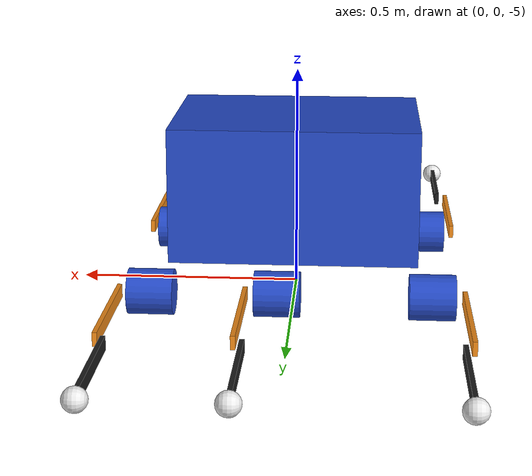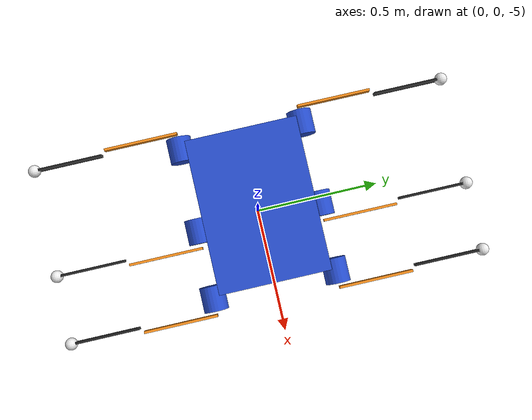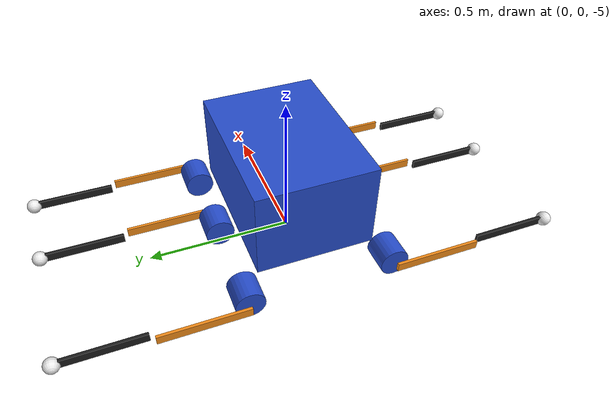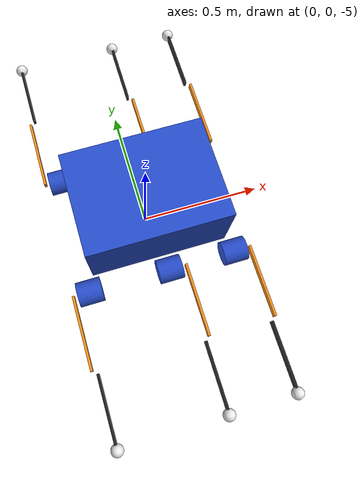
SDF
<?xml version="1.0" ?>
<sdf version="1.8">
    <world name="car_world">
        <physics name="1ms" type="ignored">
            <max_step_size>0.001</max_step_size>
            <real_time_factor>1.0</real_time_factor>
        </physics>
        <plugin
            filename="gz-sim-physics-system"
            name="gz::sim::systems::Physics">
        </plugin>
        <plugin
            filename="gz-sim-user-commands-system"
            name="gz::sim::systems::UserCommands">
        </plugin>
        <plugin
            filename="gz-sim-scene-broadcaster-system"
            name="gz::sim::systems::SceneBroadcaster">
        </plugin>

        <light type="directional" name="sun">
            <cast_shadows>true</cast_shadows>
            <pose>0 0 10 0 0 0</pose>
            <diffuse>0.8 0.8 0.8 1</diffuse>
            <specular>0.2 0.2 0.2 1</specular>
            <attenuation>
                <range>1000</range>
                <constant>0.9</constant>
                <linear>0.01</linear>
                <quadratic>0.001</quadratic>
            </attenuation>
            <direction>-0.5 0.1 -0.9</direction>
        </light>

        <model name="ground_plane">
            <static>true</static>
            <link name="link">
                <collision name="collision">
                <geometry>
                    <plane>
                    <normal>0 0 1</normal>
                    </plane>
                </geometry>
                </collision>
                <visual name="visual">
                <geometry>
                    <plane>
                    <normal>0 0 1</normal>
                    <size>100 100</size>
                    </plane>
                </geometry>
                <material>
                    <ambient>0.8 0.8 0.8 1</ambient>
                    <diffuse>0.8 0.8 0.8 1</diffuse>
                    <specular>0.8 0.8 0.8 1</specular>
                </material>
                </visual>
            </link>
        </model>

        <model name='robot'>
            <static>true</static>
            <pose>0 0 -5.15 0 0 0</pose>
            <link name='base_link'>
            <visual name='base_link_fixed_joint_lump__body_link_visual'>
                <pose>0 0 0.40000000000000002 0 0 0</pose>
                <geometry>
                <box>
                    <size>0.55000000000000004 0.40000000000000002 0.29999999999999999</size>
                </box>
                </geometry>
                <material>
                <script>
                    <name>Gazebo/Blue</name>
                    <uri>file://media/materials/scripts/gazebo.material</uri>
                </script>
                <diffuse>0.25 0.25 1 1</diffuse>
                <ambient>0.25 0.25 1 1</ambient>
                </material>
            </visual>
            </link>
            <joint name='coxa_joint_0' type='revolute'>
            <pose relative_to='base_link'>0.27500000000000002 -0.20000000000000001 0.25 0 0 0</pose>
            <parent>base_link</parent>
            <child>coxa_link_0</child>
            <axis>
                <xyz>0 0 1</xyz>
                <limit>
                <lower>-3.1400000000000001</lower>
                <upper>3.1400000000000001</upper>
                <effort>250</effort>
                <velocity>10</velocity>
                </limit>
                <dynamics>
                <spring_reference>0</spring_reference>
                <spring_stiffness>0</spring_stiffness>
                </dynamics>
            </axis>
            </joint>
            <link name='coxa_link_0'>
            <pose relative_to='coxa_joint_0'>0 0 0 0 0 0</pose>
            <visual name='coxa_link_0_visual'>
                <pose>0.029999999999999999 -0.050000000000000003 -0.050000000000000003 0 1.5707963267948966 0</pose>
                <geometry>
                <cylinder>
                    <length>0.10000000000000001</length>
                    <radius>0.050000000000000003</radius>
                </cylinder>
                </geometry>
                <material>
                <script>
                    <name>Gazebo/Blue</name>
                    <uri>file://media/materials/scripts/gazebo.material</uri>
                </script>
                <diffuse>1 0 0 1</diffuse>
                <ambient>1 0 0 1</ambient>
                </material>
            </visual>
            </link>
            <joint name='femur_joint_0' type='revolute'>
            <pose relative_to='coxa_link_0'>0.070000000000000007 -0.050000000000000003 -0.050000000000000003 0 -1.5700000000004057 0</pose>
            <parent>coxa_link_0</parent>
            <child>femur_link_0</child>
            <axis>
                <xyz>0 0 1</xyz>
                <limit>
                <lower>-3.1400000000000001</lower>
                <upper>3.1400000000000001</upper>
                <effort>250</effort>
                <velocity>10</velocity>
                </limit>
                <dynamics>
                <spring_reference>0</spring_reference>
                <spring_stiffness>0</spring_stiffness>
                </dynamics>
            </axis>
            </joint>
            <link name='femur_link_0'>
            <pose relative_to='femur_joint_0'>0 0 0 0 0 0</pose>
            <visual name='femur_link_0_visual'>
                <pose>0 -0.14999999999999999 -0.029999999999999999 0 0 0</pose>
                <geometry>
                <box>
                    <size>0.029999999999999999 0.29999999999999999 0.01</size>
                </box>
                </geometry>
                <material>
                <script>
                    <name>Gazebo/Orange</name>
                    <uri>file://media/materials/scripts/gazebo.material</uri>
                </script>
                <diffuse>1 0.37500003 0.125 1</diffuse>
                <ambient>1 0.37500003 0.125 1</ambient>
                </material>
            </visual>
            </link>
            <joint name='tibia_joint_0' type='revolute'>
            <pose relative_to='femur_link_0'>0 -0.29999999999999999 -0.01 3.1415926535897931 0.001592653589793114 3.1415926535897931</pose>
            <parent>femur_link_0</parent>
            <child>tibia_link_0</child>
            <axis>
                <xyz>0 0 1</xyz>
                <limit>
                <lower>-3.1400000000000001</lower>
                <upper>3.1400000000000001</upper>
                <effort>250</effort>
                <velocity>10</velocity>
                </limit>
                <dynamics>
                <spring_reference>0</spring_reference>
                <spring_stiffness>0</spring_stiffness>
                </dynamics>
            </axis>
            </joint>
            <link name='tibia_link_0'>
            <pose relative_to='tibia_joint_0'>0 0 0 0 0 0</pose>
            <visual name='tibia_link_0_visual'>
                <pose>0 -0.14999999999999999 0 0 0 0</pose>
                <geometry>
                <box>
                    <size>0.029999999999999999 0.27000000000000002 0.01</size>
                </box>
                </geometry>
                <material>
                <script>
                    <name>Gazebo/Black</name>
                    <uri>file://media/materials/scripts/gazebo.material</uri>
                </script>
                <diffuse>0 0 0 1</diffuse>
                <ambient>0 0 0 1</ambient>
                </material>
            </visual>
            <visual name='tibia_link_0_fixed_joint_lump__foot_link_0_visual_1'>
                <pose>0 -0.29499999999999998 0 0 0 0</pose>
                <geometry>
                <sphere>
                    <radius>0.025000000000000001</radius>
                </sphere>
                </geometry>
                <material>
                <script>
                    <name>Gazebo/White</name>
                    <uri>file://media/materials/scripts/gazebo.material</uri>
                </script>
                <diffuse>1 1 1 1</diffuse>
                <ambient>1 1 1 1</ambient>
                </material>
            </visual>
            </link>
            <joint name='coxa_joint_1' type='revolute'>
            <pose relative_to='base_link'>0 -0.20000000000000001 0.25 0 0 0</pose>
            <parent>base_link</parent>
            <child>coxa_link_1</child>
            <axis>
                <xyz>0 0 1</xyz>
                <limit>
                <lower>-3.1400000000000001</lower>
                <upper>3.1400000000000001</upper>
                <effort>250</effort>
                <velocity>10</velocity>
                </limit>
                <dynamics>
                <spring_reference>0</spring_reference>
                <spring_stiffness>0</spring_stiffness>
                </dynamics>
            </axis>
            </joint>
            <link name='coxa_link_1'>
            <pose relative_to='coxa_joint_1'>0 0 0 0 0 0</pose>
            <visual name='coxa_link_1_visual'>
                <pose>0.029999999999999999 -0.050000000000000003 -0.050000000000000003 0 1.5707963267948966 0</pose>
                <geometry>
                <cylinder>
                    <length>0.10000000000000001</length>
                    <radius>0.050000000000000003</radius>
                </cylinder>
                </geometry>
                <material>
                <script>
                    <name>Gazebo/Blue</name>
                    <uri>file://media/materials/scripts/gazebo.material</uri>
                </script>
                <diffuse>1 0 0 1</diffuse>
                <ambient>1 0 0 1</ambient>
                </material>
            </visual>
            </link>
            <joint name='femur_joint_1' type='revolute'>
            <pose relative_to='coxa_link_1'>0.070000000000000007 -0.050000000000000003 -0.050000000000000003 0 -1.5700000000004057 0</pose>
            <parent>coxa_link_1</parent>
            <child>femur_link_1</child>
            <axis>
                <xyz>0 0 1</xyz>
                <limit>
                <lower>-3.1400000000000001</lower>
                <upper>3.1400000000000001</upper>
                <effort>250</effort>
                <velocity>10</velocity>
                </limit>
                <dynamics>
                <spring_reference>0</spring_reference>
                <spring_stiffness>0</spring_stiffness>
                </dynamics>
            </axis>
            </joint>
            <link name='femur_link_1'>
            <pose relative_to='femur_joint_1'>0 0 0 0 0 0</pose>
            <visual name='femur_link_1_visual'>
                <pose>0 -0.14999999999999999 -0.029999999999999999 0 0 0</pose>
                <geometry>
                <box>
                    <size>0.029999999999999999 0.29999999999999999 0.01</size>
                </box>
                </geometry>
                <material>
                <script>
                    <name>Gazebo/Orange</name>
                    <uri>file://media/materials/scripts/gazebo.material</uri>
                </script>
                <diffuse>1 0.37500003 0.125 1</diffuse>
                <ambient>1 0.37500003 0.125 1</ambient>
                </material>
            </visual>
            </link>
            <joint name='tibia_joint_1' type='revolute'>
            <pose relative_to='femur_link_1'>0 -0.29999999999999999 -0.01 3.1415926535897931 0.001592653589793114 3.1415926535897931</pose>
            <parent>femur_link_1</parent>
            <child>tibia_link_1</child>
            <axis>
                <xyz>0 0 1</xyz>
                <limit>
                <lower>-3.1400000000000001</lower>
                <upper>3.1400000000000001</upper>
                <effort>250</effort>
                <velocity>10</velocity>
                </limit>
                <dynamics>
                <spring_reference>0</spring_reference>
                <spring_stiffness>0</spring_stiffness>
                </dynamics>
            </axis>
            </joint>
            <link name='tibia_link_1'>
            <pose relative_to='tibia_joint_1'>0 0 0 0 0 0</pose>
            <visual name='tibia_link_1_visual'>
                <pose>0 -0.14999999999999999 0 0 0 0</pose>
                <geometry>
                <box>
                    <size>0.029999999999999999 0.27000000000000002 0.01</size>
                </box>
                </geometry>
                <material>
                <script>
                    <name>Gazebo/Black</name>
                    <uri>file://media/materials/scripts/gazebo.material</uri>
                </script>
                <diffuse>0 0 0 1</diffuse>
                <ambient>0 0 0 1</ambient>
                </material>
            </visual>
            <visual name='tibia_link_1_fixed_joint_lump__foot_link_1_visual_1'>
                <pose>0 -0.29499999999999998 0 0 0 0</pose>
                <geometry>
                <sphere>
                    <radius>0.025000000000000001</radius>
                </sphere>
                </geometry>
                <material>
                <script>
                    <name>Gazebo/White</name>
                    <uri>file://media/materials/scripts/gazebo.material</uri>
                </script>
                <diffuse>1 1 1 1</diffuse>
                <ambient>1 1 1 1</ambient>
                </material>
            </visual>
            </link>
            <joint name='coxa_joint_2' type='revolute'>
            <pose relative_to='base_link'>-0.27500000000000002 -0.20000000000000001 0.25 0 0 0</pose>
            <parent>base_link</parent>
            <child>coxa_link_2</child>
            <axis>
                <xyz>0 0 1</xyz>
                <limit>
                <lower>-3.1400000000000001</lower>
                <upper>3.1400000000000001</upper>
                <effort>250</effort>
                <velocity>10</velocity>
                </limit>
                <dynamics>
                <spring_reference>0</spring_reference>
                <spring_stiffness>0</spring_stiffness>
                </dynamics>
            </axis>
            </joint>
            <link name='coxa_link_2'>
            <pose relative_to='coxa_joint_2'>0 0 0 0 0 0</pose>
            <visual name='coxa_link_2_visual'>
                <pose>-0.029999999999999999 -0.050000000000000003 -0.050000000000000003 0 1.5707963267948966 0</pose>
                <geometry>
                <cylinder>
                    <length>0.10000000000000001</length>
                    <radius>0.050000000000000003</radius>
                </cylinder>
                </geometry>
                <material>
                <script>
                    <name>Gazebo/Blue</name>
                    <uri>file://media/materials/scripts/gazebo.material</uri>
                </script>
                <diffuse>1 0 0 1</diffuse>
                <ambient>1 0 0 1</ambient>
                </material>
            </visual>
            </link>
            <joint name='femur_joint_2' type='revolute'>
            <pose relative_to='coxa_link_2'>-0.070000000000000007 -0.050000000000000003 -0.050000000000000003 0 -1.5700000000004057 0</pose>
            <parent>coxa_link_2</parent>
            <child>femur_link_2</child>
            <axis>
                <xyz>0 0 1</xyz>
                <limit>
                <lower>-3.1400000000000001</lower>
                <upper>3.1400000000000001</upper>
                <effort>250</effort>
                <velocity>10</velocity>
                </limit>
                <dynamics>
                <spring_reference>0</spring_reference>
                <spring_stiffness>0</spring_stiffness>
                </dynamics>
            </axis>
            </joint>
            <link name='femur_link_2'>
            <pose relative_to='femur_joint_2'>0 0 0 0 0 0</pose>
            <visual name='femur_link_2_visual'>
                <pose>0 -0.14999999999999999 0.029999999999999999 0 0 0</pose>
                <geometry>
                <box>
                    <size>0.029999999999999999 0.29999999999999999 0.01</size>
                </box>
                </geometry>
                <material>
                <script>
                    <name>Gazebo/Orange</name>
                    <uri>file://media/materials/scripts/gazebo.material</uri>
                </script>
                <diffuse>1 0.37500003 0.125 1</diffuse>
                <ambient>1 0.37500003 0.125 1</ambient>
                </material>
            </visual>
            </link>
            <joint name='tibia_joint_2' type='revolute'>
            <pose relative_to='femur_link_2'>0 -0.29999999999999999 0.01 3.1415926535897931 0.001592653589793114 3.1415926535897931</pose>
            <parent>femur_link_2</parent>
            <child>tibia_link_2</child>
            <axis>
                <xyz>0 0 1</xyz>
                <limit>
                <lower>-3.1400000000000001</lower>
                <upper>3.1400000000000001</upper>
                <effort>250</effort>
                <velocity>10</velocity>
                </limit>
                <dynamics>
                <spring_reference>0</spring_reference>
                <spring_stiffness>0</spring_stiffness>
                </dynamics>
            </axis>
            </joint>
            <link name='tibia_link_2'>
            <pose relative_to='tibia_joint_2'>0 0 0 0 0 0</pose>
            <visual name='tibia_link_2_visual'>
                <pose>0 -0.14999999999999999 0 0 0 0</pose>
                <geometry>
                <box>
                    <size>0.029999999999999999 0.27000000000000002 0.01</size>
                </box>
                </geometry>
                <material>
                <script>
                    <name>Gazebo/Black</name>
                    <uri>file://media/materials/scripts/gazebo.material</uri>
                </script>
                <diffuse>0 0 0 1</diffuse>
                <ambient>0 0 0 1</ambient>
                </material>
            </visual>
            <visual name='tibia_link_2_fixed_joint_lump__foot_link_2_visual_1'>
                <pose>0 -0.29499999999999998 0 0 0 0</pose>
                <geometry>
                <sphere>
                    <radius>0.025000000000000001</radius>
                </sphere>
                </geometry>
                <material>
                <script>
                    <name>Gazebo/White</name>
                    <uri>file://media/materials/scripts/gazebo.material</uri>
                </script>
                <diffuse>1 1 1 1</diffuse>
                <ambient>1 1 1 1</ambient>
                </material>
            </visual>
            </link>
            <joint name='coxa_joint_3' type='revolute'>
            <pose relative_to='base_link'>0.27500000000000002 0.20000000000000001 0.25 0 0 3.1400000000000001</pose>
            <parent>base_link</parent>
            <child>coxa_link_3</child>
            <axis>
                <xyz>0 0 1</xyz>
                <limit>
                <lower>-3.1400000000000001</lower>
                <upper>3.1400000000000001</upper>
                <effort>250</effort>
                <velocity>10</velocity>
                </limit>
                <dynamics>
                <spring_reference>0</spring_reference>
                <spring_stiffness>0</spring_stiffness>
                </dynamics>
            </axis>
            </joint>
            <link name='coxa_link_3'>
            <pose relative_to='coxa_joint_3'>0 0 0 0 0 0</pose>
            <visual name='coxa_link_3_visual'>
                <pose>-0.029999999999999999 -0.050000000000000003 -0.050000000000000003 0 1.5707963267948966 0</pose>
                <geometry>
                <cylinder>
                    <length>0.10000000000000001</length>
                    <radius>0.050000000000000003</radius>
                </cylinder>
                </geometry>
                <material>
                <script>
                    <name>Gazebo/Blue</name>
                    <uri>file://media/materials/scripts/gazebo.material</uri>
                </script>
                <diffuse>1 0 0 1</diffuse>
                <ambient>1 0 0 1</ambient>
                </material>
            </visual>
            </link>
            <joint name='femur_joint_3' type='revolute'>
            <pose relative_to='coxa_link_3'>-0.070000000000000007 -0.050000000000000003 -0.050000000000000003 0 -1.5700000000004057 0</pose>
            <parent>coxa_link_3</parent>
            <child>femur_link_3</child>
            <axis>
                <xyz>0 0 1</xyz>
                <limit>
                <lower>-3.1400000000000001</lower>
                <upper>3.1400000000000001</upper>
                <effort>250</effort>
                <velocity>10</velocity>
                </limit>
                <dynamics>
                <spring_reference>0</spring_reference>
                <spring_stiffness>0</spring_stiffness>
                </dynamics>
            </axis>
            </joint>
            <link name='femur_link_3'>
            <pose relative_to='femur_joint_3'>0 0 0 0 0 0</pose>
            <visual name='femur_link_3_visual'>
                <pose>0 -0.14999999999999999 0.029999999999999999 0 0 0</pose>
                <geometry>
                <box>
                    <size>0.029999999999999999 0.29999999999999999 0.01</size>
                </box>
                </geometry>
                <material>
                <script>
                    <name>Gazebo/Orange</name>
                    <uri>file://media/materials/scripts/gazebo.material</uri>
                </script>
                <diffuse>1 0.37500003 0.125 1</diffuse>
                <ambient>1 0.37500003 0.125 1</ambient>
                </material>
            </visual>
            </link>
            <joint name='tibia_joint_3' type='revolute'>
            <pose relative_to='femur_link_3'>0 -0.29999999999999999 0.01 3.1415926535897931 0.001592653589793114 3.1415926535897931</pose>
            <parent>femur_link_3</parent>
            <child>tibia_link_3</child>
            <axis>
                <xyz>0 0 1</xyz>
                <limit>
                <lower>-3.1400000000000001</lower>
                <upper>3.1400000000000001</upper>
                <effort>250</effort>
                <velocity>10</velocity>
                </limit>
                <dynamics>
                <spring_reference>0</spring_reference>
                <spring_stiffness>0</spring_stiffness>
                </dynamics>
            </axis>
            </joint>
            <link name='tibia_link_3'>
            <pose relative_to='tibia_joint_3'>0 0 0 0 0 0</pose>
            <visual name='tibia_link_3_visual'>
                <pose>0 -0.14999999999999999 0 0 0 0</pose>
                <geometry>
                <box>
                    <size>0.029999999999999999 0.27000000000000002 0.01</size>
                </box>
                </geometry>
                <material>
                <script>
                    <name>Gazebo/Black</name>
                    <uri>file://media/materials/scripts/gazebo.material</uri>
                </script>
                <diffuse>0 0 0 1</diffuse>
                <ambient>0 0 0 1</ambient>
                </material>
            </visual>
            <visual name='tibia_link_3_fixed_joint_lump__foot_link_3_visual_1'>
                <pose>0 -0.29499999999999998 0 0 0 0</pose>
                <geometry>
                <sphere>
                    <radius>0.025000000000000001</radius>
                </sphere>
                </geometry>
                <material>
                <script>
                    <name>Gazebo/White</name>
                    <uri>file://media/materials/scripts/gazebo.material</uri>
                </script>
                <diffuse>1 1 1 1</diffuse>
                <ambient>1 1 1 1</ambient>
                </material>
            </visual>
            </link>
            <joint name='coxa_joint_4' type='revolute'>
            <pose relative_to='base_link'>0 0.20000000000000001 0.25 0 0 3.1400000000000001</pose>
            <parent>base_link</parent>
            <child>coxa_link_4</child>
            <axis>
                <xyz>0 0 1</xyz>
                <limit>
                <lower>-3.1400000000000001</lower>
                <upper>3.1400000000000001</upper>
                <effort>250</effort>
                <velocity>10</velocity>
                </limit>
                <dynamics>
                <spring_reference>0</spring_reference>
                <spring_stiffness>0</spring_stiffness>
                </dynamics>
            </axis>
            </joint>
            <link name='coxa_link_4'>
            <pose relative_to='coxa_joint_4'>0 0 0 0 0 0</pose>
            <visual name='coxa_link_4_visual'>
                <pose>-0.029999999999999999 -0.050000000000000003 -0.050000000000000003 0 1.5707963267948966 0</pose>
                <geometry>
                <cylinder>
                    <length>0.10000000000000001</length>
                    <radius>0.050000000000000003</radius>
                </cylinder>
                </geometry>
                <material>
                <script>
                    <name>Gazebo/Blue</name>
                    <uri>file://media/materials/scripts/gazebo.material</uri>
                </script>
                <diffuse>1 0 0 1</diffuse>
                <ambient>1 0 0 1</ambient>
                </material>
            </visual>
            </link>
            <joint name='femur_joint_4' type='revolute'>
            <pose relative_to='coxa_link_4'>-0.070000000000000007 -0.050000000000000003 -0.050000000000000003 0 -1.5700000000004057 0</pose>
            <parent>coxa_link_4</parent>
            <child>femur_link_4</child>
            <axis>
                <xyz>0 0 1</xyz>
                <limit>
                <lower>-3.1400000000000001</lower>
                <upper>3.1400000000000001</upper>
                <effort>250</effort>
                <velocity>10</velocity>
                </limit>
                <dynamics>
                <spring_reference>0</spring_reference>
                <spring_stiffness>0</spring_stiffness>
                </dynamics>
            </axis>
            </joint>
            <link name='femur_link_4'>
            <pose relative_to='femur_joint_4'>0 0 0 0 0 0</pose>
            <visual name='femur_link_4_visual'>
                <pose>0 -0.14999999999999999 0.029999999999999999 0 0 0</pose>
                <geometry>
                <box>
                    <size>0.029999999999999999 0.29999999999999999 0.01</size>
                </box>
                </geometry>
                <material>
                <script>
                    <name>Gazebo/Orange</name>
                    <uri>file://media/materials/scripts/gazebo.material</uri>
                </script>
                <diffuse>1 0.37500003 0.125 1</diffuse>
                <ambient>1 0.37500003 0.125 1</ambient>
                </material>
            </visual>
            </link>
            <joint name='tibia_joint_4' type='revolute'>
            <pose relative_to='femur_link_4'>0 -0.29999999999999999 0.01 3.1415926535897931 0.001592653589793114 3.1415926535897931</pose>
            <parent>femur_link_4</parent>
            <child>tibia_link_4</child>
            <axis>
                <xyz>0 0 1</xyz>
                <limit>
                <lower>-3.1400000000000001</lower>
                <upper>3.1400000000000001</upper>
                <effort>250</effort>
                <velocity>10</velocity>
                </limit>
                <dynamics>
                <spring_reference>0</spring_reference>
                <spring_stiffness>0</spring_stiffness>
                </dynamics>
            </axis>
            </joint>
            <link name='tibia_link_4'>
            <pose relative_to='tibia_joint_4'>0 0 0 0 0 0</pose>
            <visual name='tibia_link_4_visual'>
                <pose>0 -0.14999999999999999 0 0 0 0</pose>
                <geometry>
                <box>
                    <size>0.029999999999999999 0.27000000000000002 0.01</size>
                </box>
                </geometry>
                <material>
                <script>
                    <name>Gazebo/Black</name>
                    <uri>file://media/materials/scripts/gazebo.material</uri>
                </script>
                <diffuse>0 0 0 1</diffuse>
                <ambient>0 0 0 1</ambient>
                </material>
            </visual>
            <visual name='tibia_link_4_fixed_joint_lump__foot_link_4_visual_1'>
                <pose>0 -0.29499999999999998 0 0 0 0</pose>
                <geometry>
                <sphere>
                    <radius>0.025000000000000001</radius>
                </sphere>
                </geometry>
                <material>
                <script>
                    <name>Gazebo/White</name>
                    <uri>file://media/materials/scripts/gazebo.material</uri>
                </script>
                <diffuse>1 1 1 1</diffuse>
                <ambient>1 1 1 1</ambient>
                </material>
            </visual>
            </link>
            <joint name='coxa_joint_5' type='revolute'>
            <pose relative_to='base_link'>-0.27500000000000002 0.20000000000000001 0.25 0 0 3.1400000000000001</pose>
            <parent>base_link</parent>
            <child>coxa_link_5</child>
            <axis>
                <xyz>0 0 1</xyz>
                <limit>
                <lower>-3.1400000000000001</lower>
                <upper>3.1400000000000001</upper>
                <effort>250</effort>
                <velocity>10</velocity>
                </limit>
                <dynamics>
                <spring_reference>0</spring_reference>
                <spring_stiffness>0</spring_stiffness>
                </dynamics>
            </axis>
            </joint>
            <link name='coxa_link_5'>
            <pose relative_to='coxa_joint_5'>0 0 0 0 0 0</pose>
            <visual name='coxa_link_5_visual'>
                <pose>0.029999999999999999 -0.050000000000000003 -0.050000000000000003 0 1.5707963267948966 0</pose>
                <geometry>
                <cylinder>
                    <length>0.10000000000000001</length>
                    <radius>0.050000000000000003</radius>
                </cylinder>
                </geometry>
                <material>
                <script>
                    <name>Gazebo/Blue</name>
                    <uri>file://media/materials/scripts/gazebo.material</uri>
                </script>
                <diffuse>1 0 0 1</diffuse>
                <ambient>1 0 0 1</ambient>
                </material>
            </visual>
            </link>
            <joint name='femur_joint_5' type='revolute'>
            <pose relative_to='coxa_link_5'>0.070000000000000007 -0.050000000000000003 -0.050000000000000003 0 -1.5700000000004057 0</pose>
            <parent>coxa_link_5</parent>
            <child>femur_link_5</child>
            <axis>
                <xyz>0 0 1</xyz>
                <limit>
                <lower>-3.1400000000000001</lower>
                <upper>3.1400000000000001</upper>
                <effort>250</effort>
                <velocity>10</velocity>
                </limit>
                <dynamics>
                <spring_reference>0</spring_reference>
                <spring_stiffness>0</spring_stiffness>
                </dynamics>
            </axis>
            </joint>
            <link name='femur_link_5'>
            <pose relative_to='femur_joint_5'>0 0 0 0 0 0</pose>
            <visual name='femur_link_5_visual'>
                <pose>0 -0.14999999999999999 -0.029999999999999999 0 0 0</pose>
                <geometry>
                <box>
                    <size>0.029999999999999999 0.29999999999999999 0.01</size>
                </box>
                </geometry>
                <material>
                <script>
                    <name>Gazebo/Orange</name>
                    <uri>file://media/materials/scripts/gazebo.material</uri>
                </script>
                <diffuse>1 0.37500003 0.125 1</diffuse>
                <ambient>1 0.37500003 0.125 1</ambient>
                </material>
            </visual>
            </link>
            <joint name='tibia_joint_5' type='revolute'>
            <pose relative_to='femur_link_5'>0 -0.29999999999999999 -0.01 3.1415926535897931 0.001592653589793114 3.1415926535897931</pose>
            <parent>femur_link_5</parent>
            <child>tibia_link_5</child>
            <axis>
                <xyz>0 0 1</xyz>
                <limit>
                <lower>-3.1400000000000001</lower>
                <upper>3.1400000000000001</upper>
                <effort>250</effort>
                <velocity>10</velocity>
                </limit>
                <dynamics>
                <spring_reference>0</spring_reference>
                <spring_stiffness>0</spring_stiffness>
                </dynamics>
            </axis>
            </joint>
            <link name='tibia_link_5'>
            <pose relative_to='tibia_joint_5'>0 0 0 0 0 0</pose>
            <visual name='tibia_link_5_visual'>
                <pose>0 -0.14999999999999999 0 0 0 0</pose>
                <geometry>
                <box>
                    <size>0.029999999999999999 0.27000000000000002 0.01</size>
                </box>
                </geometry>
                <material>
                <script>
                    <name>Gazebo/Black</name>
                    <uri>file://media/materials/scripts/gazebo.material</uri>
                </script>
                <diffuse>0 0 0 1</diffuse>
                <ambient>0 0 0 1</ambient>
                </material>
            </visual>
            <visual name='tibia_link_5_fixed_joint_lump__foot_link_5_visual_1'>
                <pose>0 -0.29499999999999998 0 0 0 0</pose>
                <geometry>
                <sphere>
                    <radius>0.025000000000000001</radius>
                </sphere>
                </geometry>
                <material>
                <script>
                    <name>Gazebo/White</name>
                    <uri>file://media/materials/scripts/gazebo.material</uri>
                </script>
                <diffuse>1 1 1 1</diffuse>
                <ambient>1 1 1 1</ambient>
                </material>
            </visual>
            </link>
            <frame name='body_joint' attached_to='base_link'>
            <pose>0 0 0.40000000000000002 0 0 0</pose>
            </frame>
            <frame name='body_link' attached_to='body_joint'>
            <pose>0 0 0 0 0 0</pose>
            </frame>
            <frame name='foot_joint_0' attached_to='tibia_link_0'>
            <pose>0 -0.29499999999999998 0 0 0 0</pose>
            </frame>
            <frame name='foot_link_0' attached_to='foot_joint_0'>
            <pose>0 0 0 0 0 0</pose>
            </frame>
            <frame name='foot_joint_1' attached_to='tibia_link_1'>
            <pose>0 -0.29499999999999998 0 0 0 0</pose>
            </frame>
            <frame name='foot_link_1' attached_to='foot_joint_1'>
            <pose>0 0 0 0 0 0</pose>
            </frame>
            <frame name='foot_joint_2' attached_to='tibia_link_2'>
            <pose>0 -0.29499999999999998 0 0 0 0</pose>
            </frame>
            <frame name='foot_link_2' attached_to='foot_joint_2'>
            <pose>0 0 0 0 0 0</pose>
            </frame>
            <frame name='foot_joint_3' attached_to='tibia_link_3'>
            <pose>0 -0.29499999999999998 0 0 0 0</pose>
            </frame>
            <frame name='foot_link_3' attached_to='foot_joint_3'>
            <pose>0 0 0 0 0 0</pose>
            </frame>
            <frame name='foot_joint_4' attached_to='tibia_link_4'>
            <pose>0 -0.29499999999999998 0 0 0 0</pose>
            </frame>
            <frame name='foot_link_4' attached_to='foot_joint_4'>
            <pose>0 0 0 0 0 0</pose>
            </frame>
            <frame name='foot_joint_5' attached_to='tibia_link_5'>
            <pose>0 -0.29499999999999998 0 0 0 0</pose>
            </frame>
            <frame name='foot_link_5' attached_to='foot_joint_5'>
            <pose>0 0 0 0 0 0</pose>
            </frame>
        </model>
    </world>
</sdf>
